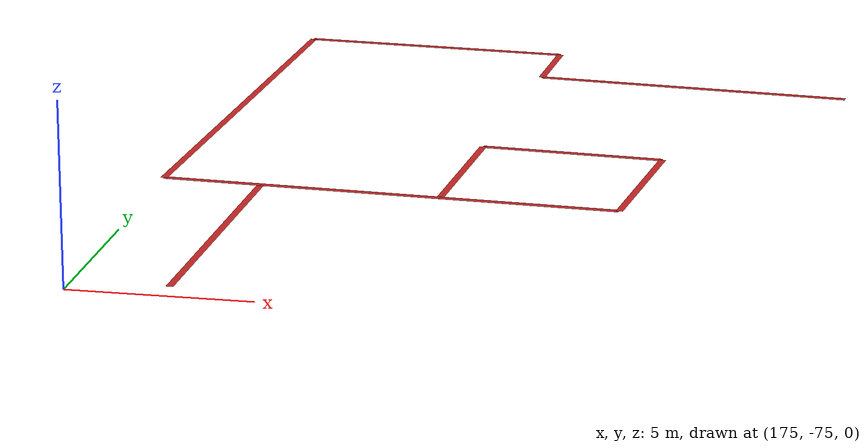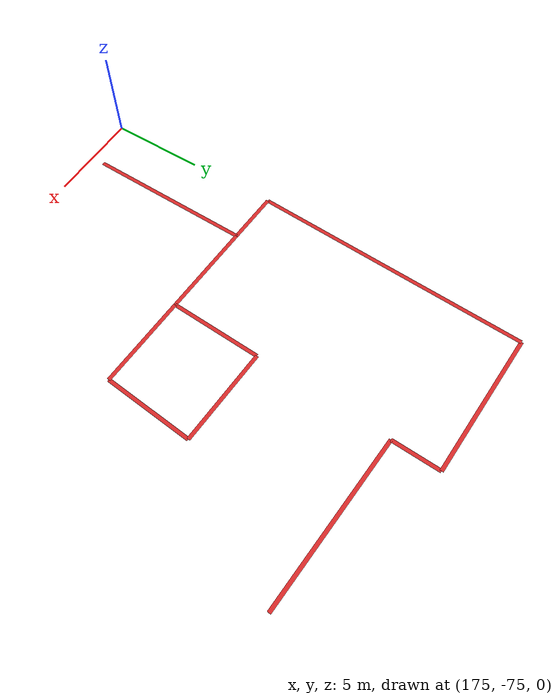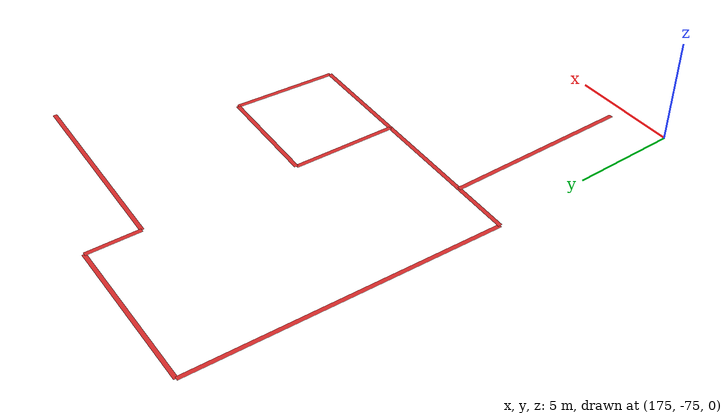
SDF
<sdf version="1.4">
 <world name="default">
  <include><uri>model://sun</uri></include>
  <model name="office_building_170023143">
   <static>true</static>
   <pose>182.899304467 -59.1883379062 0.0 0 0 0</pose>
   <link name="office_building_170023143_0">
    <collision name="office_building_170023143_0">
     <geometry><box><size>4.88624782974 0.2 0</size></box></geometry>
    </collision>
    <visual name="office_building_170023143_0">
     <geometry><box><size>4.88624782974 0.2 0</size></box></geometry>
     <material>
      <script><uri>file://media/materials/scripts/gazebo.material</uri><name>Gazebo/Red</name></script>
     </material>
    </visual>
    <pose>5.05941402953 -4.19694665799 0 0 0 -1.65508417354</pose>
   </link>
   <link name="office_building_170023143_1">
    <collision name="office_building_170023143_1">
     <geometry><box><size>5.18961605572 0.2 0</size></box></geometry>
    </collision>
    <visual name="office_building_170023143_1">
     <geometry><box><size>5.18961605572 0.2 0</size></box></geometry>
     <material>
      <script><uri>file://media/materials/scripts/gazebo.material</uri><name>Gazebo/Red</name></script>
     </material>
    </visual>
    <pose>2.67425252634 -1.61911163188 0 0 0 -0.0552863866708</pose>
   </link>
   <link name="office_building_170023143_2">
    <collision name="office_building_170023143_2">
     <geometry><box><size>4.95228702515 0.2 0</size></box></geometry>
    </collision>
    <visual name="office_building_170023143_2">
     <geometry><box><size>4.95228702515 0.2 0</size></box></geometry>
     <material>
      <script><uri>file://media/materials/scripts/gazebo.material</uri><name>Gazebo/Red</name></script>
     </material>
    </visual>
    <pose>-0.0221970109301 -3.94961760916 0 0 0 1.52813395041</pose>
   </link>
   <link name="office_building_170023143_3">
    <collision name="office_building_170023143_3">
     <geometry><box><size>5.07504997065 0.2 0</size></box></geometry>
    </collision>
    <visual name="office_building_170023143_3">
     <geometry><box><size>5.07504997065 0.2 0</size></box></geometry>
     <material>
      <script><uri>file://media/materials/scripts/gazebo.material</uri><name>Gazebo/Red</name></script>
     </material>
    </visual>
    <pose>-2.66304877333 -6.31597851467 0 0 0 -0.0423884571646</pose>
   </link>
   <link name="office_building_170023143_4">
    <collision name="office_building_170023143_4">
     <geometry><box><size>2.79365354063 0.2 0</size></box></geometry>
    </collision>
    <visual name="office_building_170023143_4">
     <geometry><box><size>2.79365354063 0.2 0</size></box></geometry>
     <material>
      <script><uri>file://media/materials/scripts/gazebo.material</uri><name>Gazebo/Red</name></script>
     </material>
    </visual>
    <pose>-6.59379148148 -6.14751494607 0 0 0 -0.0436370144828</pose>
   </link>
   <link name="office_building_170023143_5">
    <collision name="office_building_170023143_5">
     <geometry><box><size>14.9141957841 0.2 0</size></box></geometry>
    </collision>
    <visual name="office_building_170023143_5">
     <geometry><box><size>14.9141957841 0.2 0</size></box></geometry>
     <material>
      <script><uri>file://media/materials/scripts/gazebo.material</uri><name>Gazebo/Red</name></script>
     </material>
    </visual>
    <pose>-7.67246315149 1.36378352473 0 0 0 -1.61329554016</pose>
   </link>
   <link name="office_building_170023143_6">
    <collision name="office_building_170023143_6">
     <geometry><box><size>7.84530393587 0.2 0</size></box></geometry>
    </collision>
    <visual name="office_building_170023143_6">
     <geometry><box><size>7.84530393587 0.2 0</size></box></geometry>
     <material>
      <script><uri>file://media/materials/scripts/gazebo.material</uri><name>Gazebo/Red</name></script>
     </material>
    </visual>
    <pose>-3.43601513814 8.66001482435 0 0 0 3.1022894335</pose>
   </link>
   <link name="office_building_170023143_7">
    <collision name="office_building_170023143_7">
     <geometry><box><size>2.58298164823 0.2 0</size></box></geometry>
    </collision>
    <visual name="office_building_170023143_7">
     <geometry><box><size>2.58298164823 0.2 0</size></box></geometry>
     <material>
      <script><uri>file://media/materials/scripts/gazebo.material</uri><name>Gazebo/Red</name></script>
     </material>
    </visual>
    <pose>0.439141983187 7.21515652761 0 0 0 1.53635993706</pose>
   </link>
   <link name="office_building_170023143_8">
    <collision name="office_building_170023143_8">
     <geometry><box><size>9.21414520436 0.2 0</size></box></geometry>
    </collision>
    <visual name="office_building_170023143_8">
     <geometry><box><size>9.21414520436 0.2 0</size></box></geometry>
     <material>
      <script><uri>file://media/materials/scripts/gazebo.material</uri><name>Gazebo/Red</name></script>
     </material>
    </visual>
    <pose>4.99258960102 5.63406438887 0 0 0 3.07852449429</pose>
   </link>
  </model>
  <model name="office_building_170023140">
   <static>true</static>
   <pose>181.451089709 -67.7738281949 0.0 0 0 0</pose>
   <link name="office_building_170023140_0">
    <collision name="office_building_170023140_0">
     <geometry><box><size>8.87099967243 0.2 0</size></box></geometry>
    </collision>
    <visual name="office_building_170023140_0">
     <geometry><box><size>8.87099967243 0.2 0</size></box></geometry>
     <material>
      <script><uri>file://media/materials/scripts/gazebo.material</uri><name>Gazebo/Red</name></script>
     </material>
    </visual>
    <pose>-3.81117925 -2.05803765347 0 0 0 -1.58457189465</pose>
   </link>
   <link name="office_building_170023140_1">
    <collision name="office_building_170023140_1">
     <geometry><box><size>5.07504997065 0.2 0</size></box></geometry>
    </collision>
    <visual name="office_building_170023140_1">
     <geometry><box><size>5.07504997065 0.2 0</size></box></geometry>
     <material>
      <script><uri>file://media/materials/scripts/gazebo.material</uri><name>Gazebo/Red</name></script>
     </material>
    </visual>
    <pose>-1.2148340156 2.26951177406 0 0 0 3.09920419643</pose>
   </link>
   <link name="office_building_170023140_2">
    <collision name="office_building_170023140_2">
     <geometry><box><size>4.98587117622 0.2 0</size></box></geometry>
    </collision>
    <visual name="office_building_170023140_2">
     <geometry><box><size>4.98587117622 0.2 0</size></box></geometry>
     <material>
      <script><uri>file://media/materials/scripts/gazebo.material</uri><name>Gazebo/Red</name></script>
     </material>
    </visual>
    <pose>3.81117925 2.05803765347 0 0 0 3.09988491679</pose>
   </link>
  </model>
  <model name="office_building_170023132">
   <static>true</static>
   <pose>192.489807177 -53.8446405231 0.0 0 0 0</pose>
  </model>
 </world>
</sdf>
